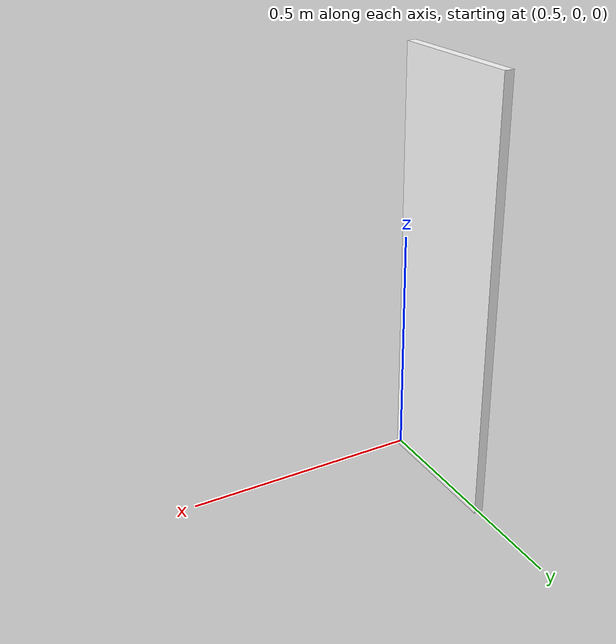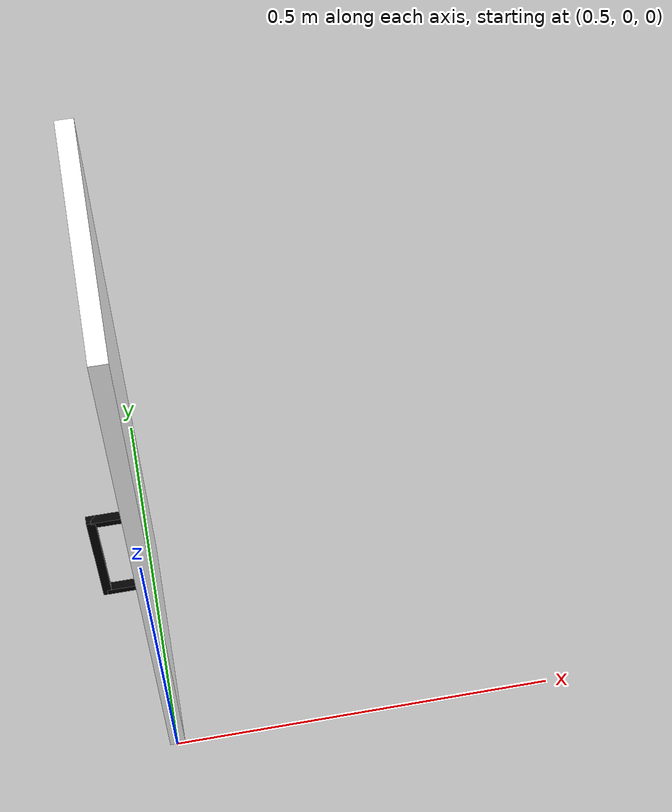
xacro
<?xml version="1.0" ?>
<robot name="shelf" xmlns:xacro="http://www.ros.org/wiki/xacro" >
    <xacro:property name="door_length" default="0.30"/>
    <xacro:property name="door_height" default="0.90"/>
    <xacro:property name="door_width" default="0.02"/>
    <xacro:property name="handle_height" default="0.036"/>
    <xacro:property name="handle_length" default="0.16"/>
    <xacro:property name="handle_offset" default="0.25"/>

    <link name="world"/>
    <joint name="fixed" type="fixed">
        <parent link="world"/>
        <child link="shelf"/>
        <origin xyz="0.5 0 0" rpy="0 0 3.14159"/>
    </joint>

    <link name="shelf"/>
    <link name="door">
        <visual>
            <origin rpy="0 0 0" xyz="0 ${door_length/2} 0"/>
            <geometry>
                <box size="${door_width} ${door_length} ${door_height}"/>
            </geometry>
            <material name="door_material">
                <color rgba="1.0 1.0 1.0 1"/>
            </material>
        </visual>
        <collision>
            <origin rpy="0 0 0" xyz="0 ${door_length/2} 0"/>
            <geometry>
                <box size="${door_width} ${door_length} ${door_height}"/>
            </geometry>
        </collision>
    </link>

    <link name="door_hinge"/>
    <joint name="door_hinge_joint" type="fixed">
        <parent link="shelf"/>
        <child link="door_hinge"/>
        <dynamics damping="2.0" friction="4.0"/>
        <origin xyz="0 -${door_length} ${door_height/2}"/>
    </joint>

    <joint name="articulation_joint" type="revolute">
        <parent link="door_hinge"/>
        <child link="door"/>
        <dynamics damping="2.0" friction="4.0"/>
        <origin xyz="0 0 0"/>
        <axis xyz="0 0 -1"/>
        <limit effort="100" lower="0" upper="1.57" velocity="10.0"/>
    </joint>

    <link name="handle">
        <inertial>
            <origin rpy="0 0 0" xyz="0 0 0"/>
            <mass value="0.1"/>
            <inertia ixx="0.001" ixy="0" ixz="0" iyy="0.001" iyz="0" izz="0.001"/>
        </inertial>
        <visual>
            <origin rpy="0 0 0" xyz="0 0 0"/>
            <geometry>
                <box size="0.01 0.01 ${handle_length+0.01}"/>
            </geometry>
            <material name="handle_material">
                <color rgba="0.0 0.0 0.0 1"/>
            </material>
        </visual>
        <collision>
            <origin rpy="0 0 0" xyz="0 0 0"/>
            <geometry>
                <box size="0.01 0.01 ${handle_length+0.01}"/>
            </geometry>
        </collision>
    </link>

    <link name="handle_support_left">
        <inertial>
            <origin rpy="0 0 0" xyz="0 0 0"/>
            <mass value="0.1"/>
            <inertia ixx="0.001" ixy="0" ixz="0" iyy="0.001" iyz="0" izz="0.001"/>
        </inertial>
        <visual>
            <origin rpy="0 0 0" xyz="0 0 0"/>
            <geometry>
                <box size="${handle_height} 0.01 0.01"/>
            </geometry>
            <material name="handle_material">
                <color rgba="0.0 0.0 0.0 1"/>
            </material>
        </visual>
        <collision>
            <origin rpy="0 0 0" xyz="0 0 0"/>
            <geometry>
                <box size="${handle_height} 0.01 0.01"/>
            </geometry>
        </collision>
    </link>

    <link name="handle_support_right">
        <inertial>
            <origin rpy="0 0 0" xyz="0 0 0"/>
            <mass value="0.1"/>
            <inertia ixx="0.001" ixy="0" ixz="0" iyy="0.001" iyz="0" izz="0.001"/>
        </inertial>
        <visual>
            <origin rpy="0 0 0" xyz="0 0 0"/>
            <geometry>
                <box size="${handle_height} 0.01 0.01"/>
            </geometry>
            <material name="handle_material">
                <color rgba="0.0 0.0 0.0 1"/>
            </material>
        </visual>
        <collision>
            <origin rpy="0 0 0" xyz="0 0 0"/>
            <geometry>
                <box size="${handle_height} 0.01 0.01"/>
            </geometry>
        </collision>
    </link>

    <joint name="handle_joint" type="fixed">
        <parent link="door"/>
        <child link="handle"/>
        <origin xyz="${handle_height + door_width/2} ${handle_offset} 0" rpy="0 0 0"/> <!-- height handle + half the width door, 0.30 minus some offset -->
    </joint>

    <joint name="handle_support_left_joint" type="fixed">
        <parent link="handle"/>
        <child link="handle_support_left"/>
        <origin xyz="-${handle_height/2} 0 ${handle_length/2}" rpy="0 0 0"/>
    </joint>

    <joint name="handle_support_right_joint" type="fixed">
        <parent link="handle"/>
        <child link="handle_support_right"/>
        <origin xyz="-${handle_height/2} 0 -${handle_length/2}" rpy="0 0 0"/>
    </joint>
</robot>
